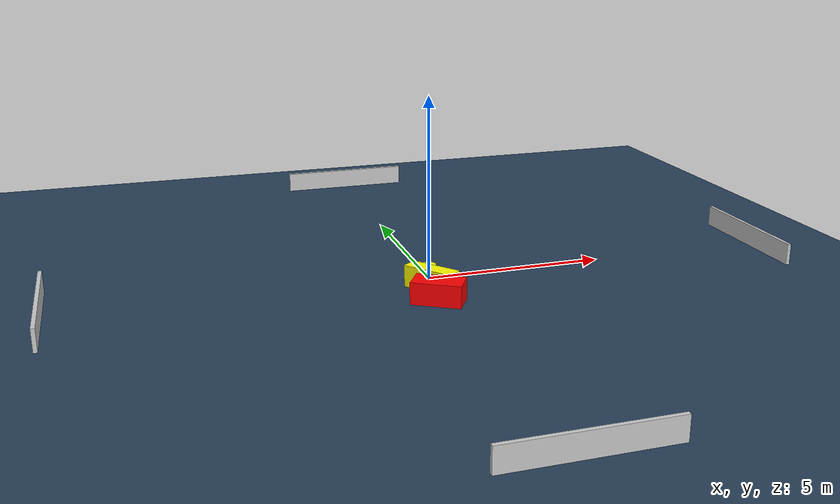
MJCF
<?xml version="1.0" ?>
<mujoco model="generated_environment">
  <option timestep="0.01" integrator="RK4" cone="elliptic"/>
  <default>
    <geom density="1"/>
  </default>
  <asset>
    <texture builtin="gradient" height="3072" name="skybox" rgb1="0.3 0.5 0.7" rgb2="0 0 0" type="skybox" width="512"/>
    <texture builtin="checker" height="300" name="groundplane" rgb1="0.2 0.3 0.4" rgb2="0.1 0.2 0.3" type="2d" width="300"/>
    <material name="groundplane" reflectance="0.2" texrepeat="5 5" texture="groundplane"/>
  </asset>
  <worldbody>
    <light dir="0 0 -1" directional="true" pos="0 0 1.5"/>
    <geom condim="3" friction="0.5 0.005 0.001" material="groundplane" name="floor" pos="0 0 0" size="0 0 0.05" type="plane"/>
    <body name="walls">
      <geom name="wall_1" condim="4" pos="-10.0 0.0 0.3" rgba="0.800000011920929 0.800000011920929 0.800000011920929 1.0" size="0.05 2.0 0.3" type="box"/>
      <geom name="wall_2" condim="4" pos="10.0 0.0 0.3" rgba="0.800000011920929 0.800000011920929 0.800000011920929 1.0" size="0.05 2.0 0.3" type="box"/>
      <geom name="wall_3" condim="4" pos="0.0 -10.0 0.3" rgba="0.800000011920929 0.800000011920929 0.800000011920929 1.0" size="2.0 0.05 0.3" type="box"/>
      <geom name="wall_4" condim="4" pos="0.0 10.0 0.3" rgba="0.800000011920929 0.800000011920929 0.800000011920929 1.0" size="2.0 0.05 0.3" type="box"/>
    </body>
    <body name="robot">
      <joint name="joint_x" type="slide" pos="0 0 0" axis="1 0 0"/>
      <joint name="joint_y" type="slide" pos="0 0 0" axis="0 1 0"/>
      <geom name="robot" type="cylinder" pos="0.0 0.0 0.2" size="0.2 0.2 0.0" mass="5.0" friction="1.0 0.005 0.0001" condim="4" rgba="1.0 1.0 0.0 1.0"/>
    </body>
    <body name="obstacle_1_movable">
      <geom name="obstacle_1_movable" condim="4" pos="-0.1851190536711949 -0.8466606746624715 0.3" euler="0 0 218.9008299726474" friction="0.0 0.005 0.001" rgba="1.0 1.0 0.0 1.0" size="0.2248473436674817 0.7232157924128282 0.3" type="box" mass="0.1"/>
      <joint type="free"/>
    </body>
    <body name="obstacle_2_static">
      <geom name="obstacle_2_static" condim="4" pos="-0.2942871954228796 -1.7629919460022958 0.3" euler="0 0 329.1159754542609" friction="0.0 0.005 0.001" rgba="1.0 0.0 0.0 1.0" size="0.6669208371157325 0.35918064025087937 0.3" type="box"/>
    </body>
  </worldbody>
  <actuator>
    <motor name="actuator_x" joint="joint_x" gear="1" ctrlrange="-1 1"/>
    <motor name="actuator_y" joint="joint_y" gear="1" ctrlrange="-1 1"/>
  </actuator>
</mujoco>
